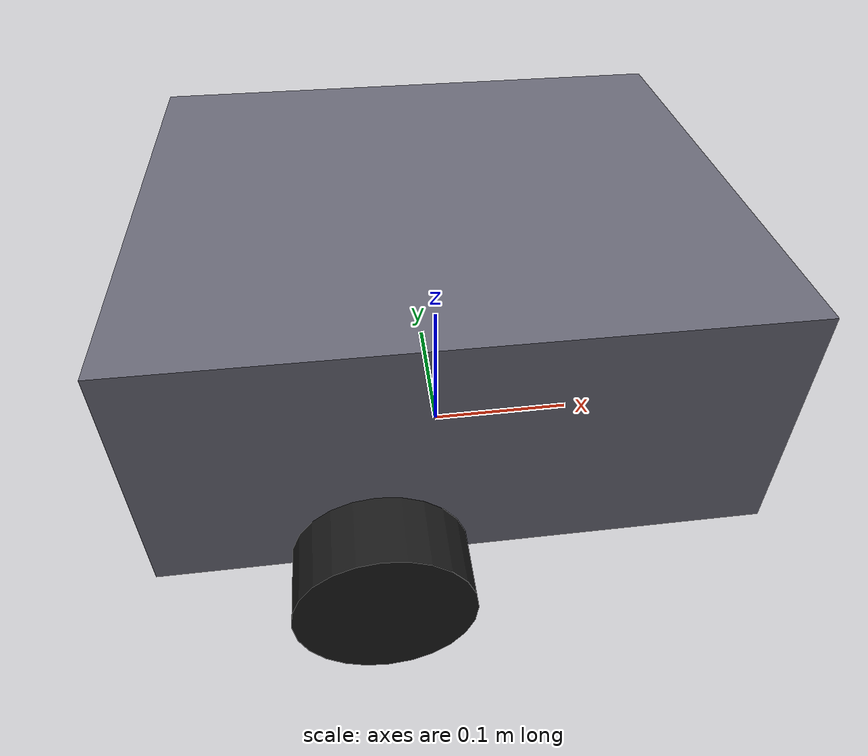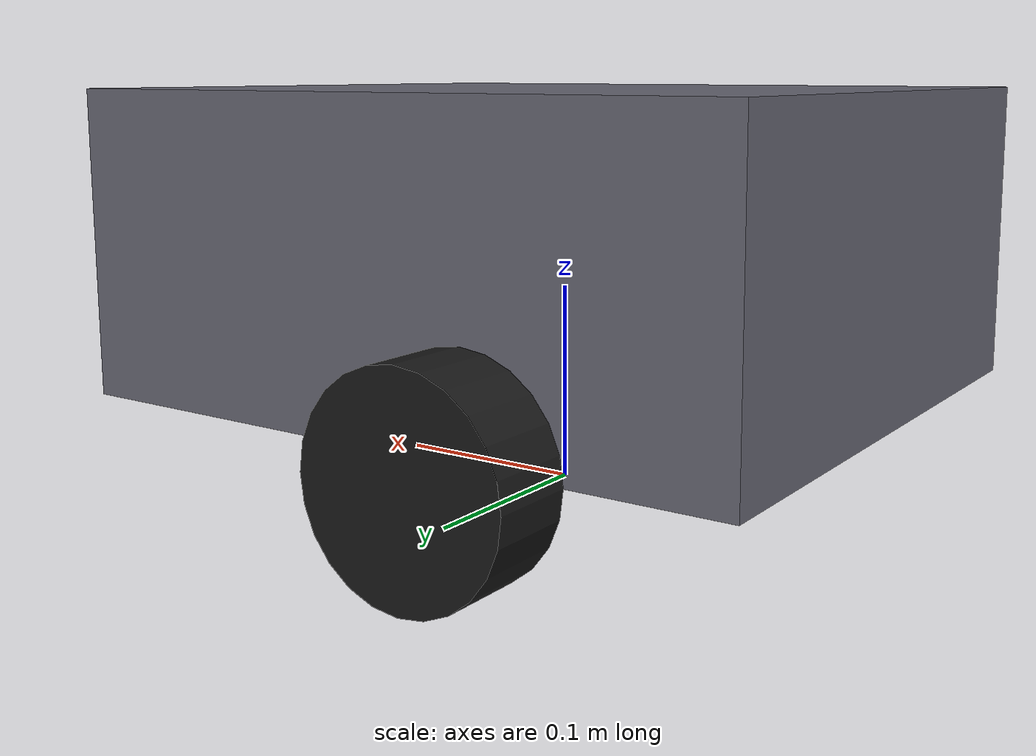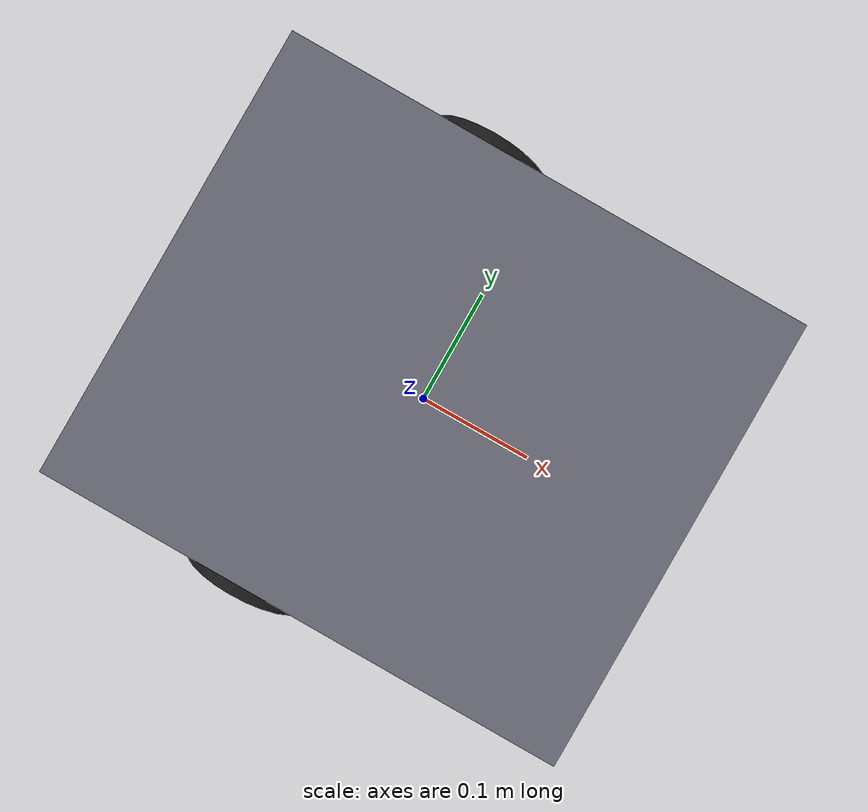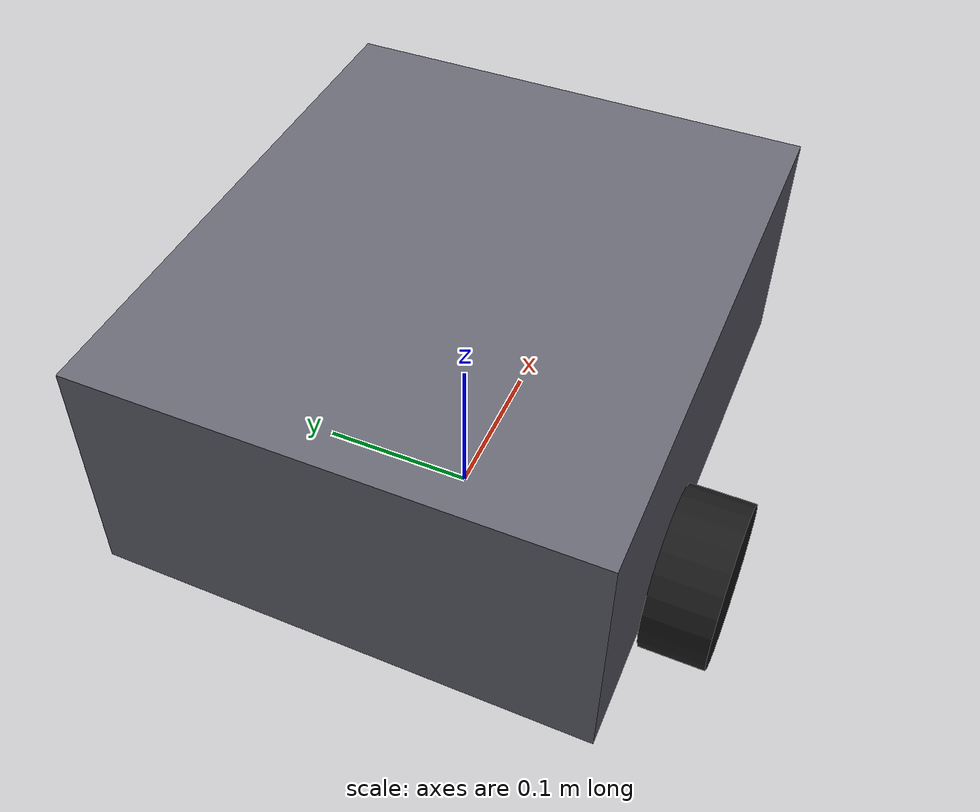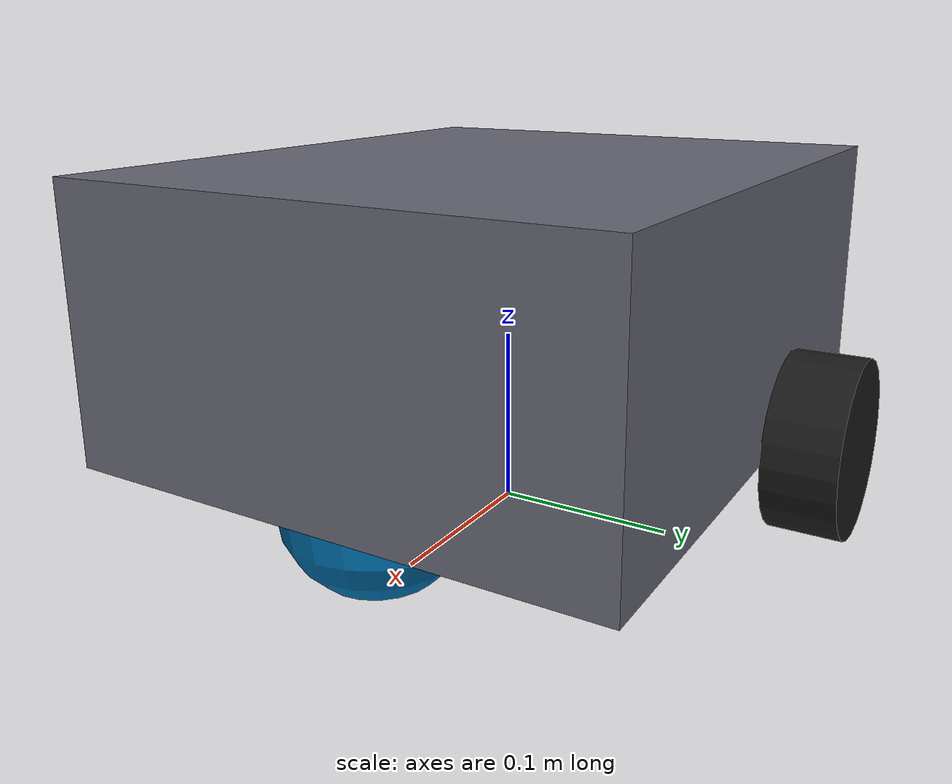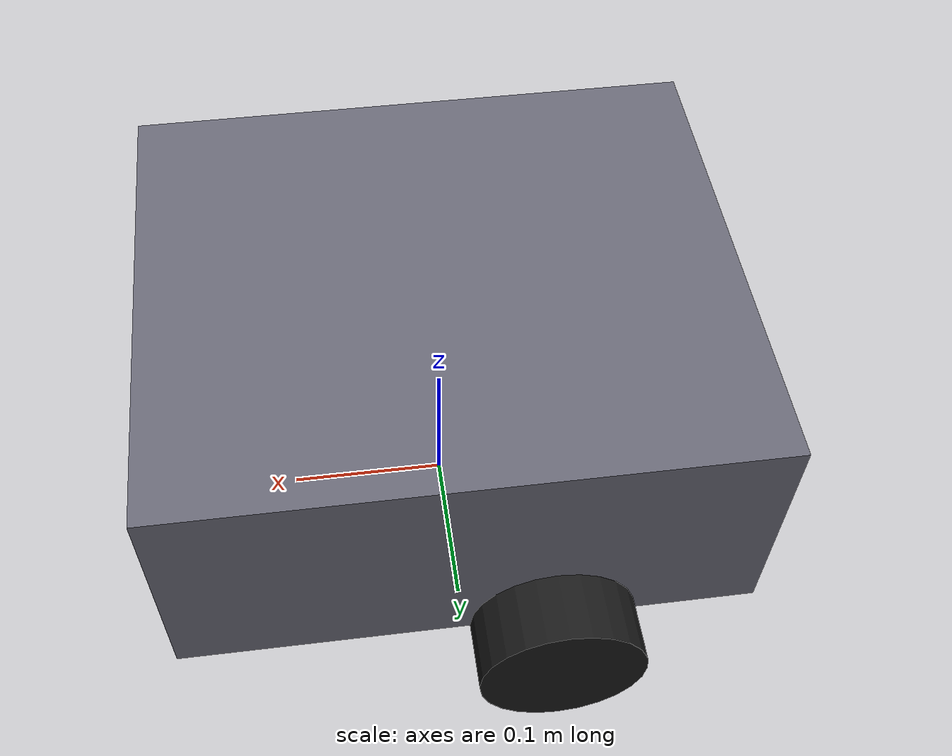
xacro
<?xml version="1.0"?>
<robot name="warehouse_bot" xmlns:xacro="http://ros.org/wiki/xacro">

  <xacro:property name="body_x" value="0.35"/>
  <xacro:property name="body_y" value="0.30"/>
  <xacro:property name="body_z" value="0.15"/>
  <xacro:property name="wheel_radius" value="0.05"/>
  <xacro:property name="wheel_width" value="0.04"/>
  <xacro:property name="wheel_sep" value="0.34"/>

  <link name="base_footprint"/>

  <link name="base_link">
    <inertial>
      <mass value="5.0"/>
      <inertia ixx="0.08" ixy="0" ixz="0" iyy="0.10" iyz="0" izz="0.10"/>
    </inertial>
    <collision>
      <geometry><box size="${body_x} ${body_y} ${body_z}"/></geometry>
    </collision>
    <visual>
      <geometry><box size="${body_x} ${body_y} ${body_z}"/></geometry>
      <material name="grey"><color rgba="0.4 0.4 0.45 1"/></material>
    </visual>
  </link>

  <joint name="base_joint" type="fixed">
    <parent link="base_footprint"/>
    <child link="base_link"/>
    <origin xyz="0 0 ${wheel_radius + body_z/2}"/>
  </joint>

  <xacro:macro name="wheel" params="name y">
    <link name="${name}">
      <inertial>
        <mass value="0.5"/>
        <inertia ixx="0.001" ixy="0" ixz="0" iyy="0.001" iyz="0" izz="0.001"/>
      </inertial>
      <collision>
        <origin rpy="1.5708 0 0"/>
        <geometry><cylinder radius="${wheel_radius}" length="${wheel_width}"/></geometry>
      </collision>
      <visual>
        <origin rpy="1.5708 0 0"/>
        <geometry><cylinder radius="${wheel_radius}" length="${wheel_width}"/></geometry>
        <material name="black"><color rgba="0.1 0.1 0.1 1"/></material>
      </visual>
    </link>
    <joint name="${name}_joint" type="continuous">
      <parent link="base_link"/>
      <child link="${name}"/>
      <origin xyz="-0.05 ${y} ${-body_z/2}"/>
      <axis xyz="0 1 0"/>
    </joint>
  </xacro:macro>

  <xacro:wheel name="left_wheel" y="${wheel_sep/2}"/>
  <xacro:wheel name="right_wheel" y="${-wheel_sep/2}"/>

  <link name="caster">
    <inertial>
      <mass value="0.1"/>
      <inertia ixx="0.0001" ixy="0" ixz="0" iyy="0.0001" iyz="0" izz="0.0001"/>
    </inertial>
    <collision>
      <geometry><sphere radius="${wheel_radius}"/></geometry>
      <surface><friction><ode><mu>0.0</mu><mu2>0.0</mu2></ode></friction></surface>
    </collision>
    <visual>
      <geometry><sphere radius="${wheel_radius}"/></geometry>
    </visual>
  </link>
  <joint name="caster_joint" type="fixed">
    <parent link="base_link"/>
    <child link="caster"/>
    <origin xyz="${body_x/2 - wheel_radius} 0 ${-body_z/2}"/>
  </joint>

  <link name="lidar_link"/>
  <joint name="lidar_joint" type="fixed">
    <parent link="base_link"/>
    <child link="lidar_link"/>
    <origin xyz="${body_x/2 - 0.03} 0 ${body_z/2 + 0.03}"/>
  </joint>

  <link name="imu_link"/>
  <joint name="imu_joint" type="fixed">
    <parent link="base_link"/>
    <child link="imu_link"/>
    <origin xyz="0 0 ${body_z/2}"/>
  </joint>

  <link name="camera_link"/>
  <joint name="camera_joint" type="fixed">
    <parent link="base_link"/>
    <child link="camera_link"/>
    <origin xyz="${body_x/2} 0 ${body_z/2}" rpy="0 0 0"/>
  </joint>

  <!-- Gazebo Harmonic: differential drive + friction + LiDAR + camera -->
  <gazebo>
    <plugin filename="gz-sim-diff-drive-system" name="gz::sim::systems::DiffDrive">
      <left_joint>left_wheel_joint</left_joint>
      <right_joint>right_wheel_joint</right_joint>
      <wheel_separation>${wheel_sep}</wheel_separation>
      <wheel_radius>${wheel_radius}</wheel_radius>
      <topic>cmd_vel</topic>
      <odom_topic>odom</odom_topic>
      <tf_topic>tf</tf_topic>
      <frame_id>odom</frame_id>
      <child_frame_id>base_footprint</child_frame_id>
      <odom_publish_frequency>30</odom_publish_frequency>
    </plugin>
    <plugin filename="gz-sim-joint-state-publisher-system" name="gz::sim::systems::JointStatePublisher">
      <topic>joint_states</topic>
    </plugin>
  </gazebo>

  <gazebo reference="left_wheel"><mu1>1.0</mu1><mu2>1.0</mu2></gazebo>
  <gazebo reference="right_wheel"><mu1>1.0</mu1><mu2>1.0</mu2></gazebo>
  <gazebo reference="caster"><mu1>0.0</mu1><mu2>0.0</mu2></gazebo>

  <gazebo reference="lidar_link">
    <sensor name="lidar" type="gpu_lidar">
      <topic>scan</topic>
      <gz_frame_id>lidar_link</gz_frame_id>
      <update_rate>10</update_rate>
      <always_on>true</always_on>
      <visualize>false</visualize>
      <lidar>
        <scan><horizontal>
          <samples>180</samples><resolution>1</resolution>
          <min_angle>-1.5708</min_angle><max_angle>1.5708</max_angle>
        </horizontal></scan>
        <range><min>0.08</min><max>10.0</max><resolution>0.01</resolution></range>
      </lidar>
    </sensor>
  </gazebo>

  <!-- IMU: orientation, angular velocity, linear acceleration (physics-based). -->
  <gazebo reference="imu_link">
    <sensor name="imu" type="imu">
      <topic>imu</topic>
      <gz_frame_id>imu_link</gz_frame_id>
      <update_rate>50</update_rate>
      <always_on>true</always_on>
    </sensor>
  </gazebo>

  <gazebo reference="camera_link">
    <sensor name="camera" type="camera">
      <topic>image</topic>
      <gz_frame_id>camera_link</gz_frame_id>
      <update_rate>10</update_rate>
      <always_on>true</always_on>
      <visualize>false</visualize>
      <camera>
        <horizontal_fov>1.047</horizontal_fov>
        <image><width>320</width><height>240</height><format>R8G8B8</format></image>
        <clip><near>0.1</near><far>100</far></clip>
      </camera>
    </sensor>
  </gazebo>

  <!-- Depth camera: a per-pixel depth image on /depth (32FC1) plus a point cloud on
       /depth/points. Rendering-based like the RGB camera; runs headless under llvmpipe. -->
  <gazebo reference="camera_link">
    <sensor name="depth" type="depth_camera">
      <topic>depth</topic>
      <gz_frame_id>camera_link</gz_frame_id>
      <update_rate>10</update_rate>
      <always_on>true</always_on>
      <visualize>false</visualize>
      <camera>
        <horizontal_fov>1.047</horizontal_fov>
        <image><width>320</width><height>240</height></image>
        <clip><near>0.1</near><far>10.0</far></clip>
      </camera>
    </sensor>
  </gazebo>

  <gazebo reference="base_footprint">
    <sensor name="bumper" type="contact">
      <always_on>true</always_on>
      <update_rate>30</update_rate>
      <contact>
        <collision>base_footprint_fixed_joint_lump__base_link_collision</collision>
      </contact>
    </sensor>
  </gazebo>

</robot>
